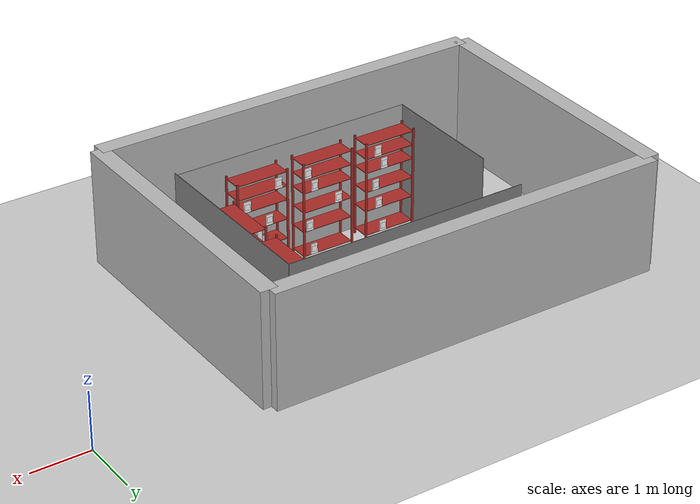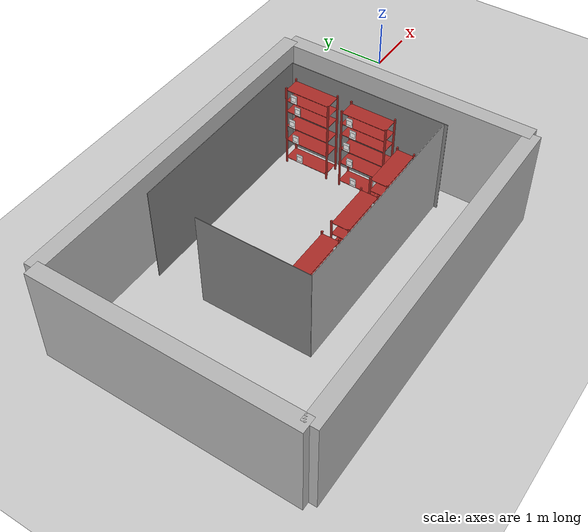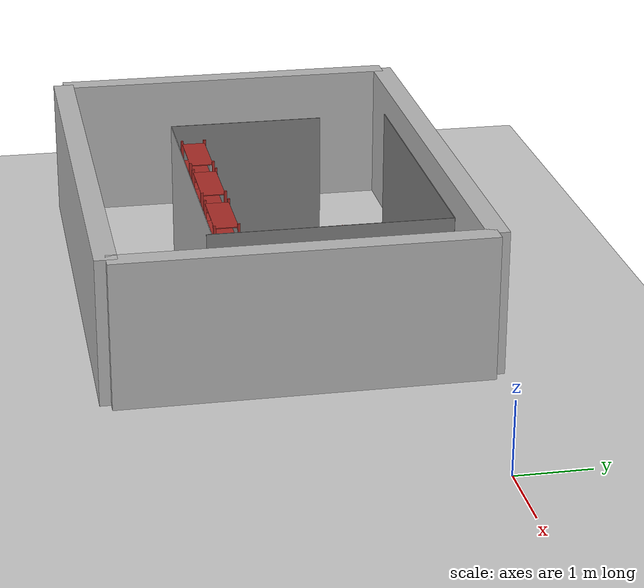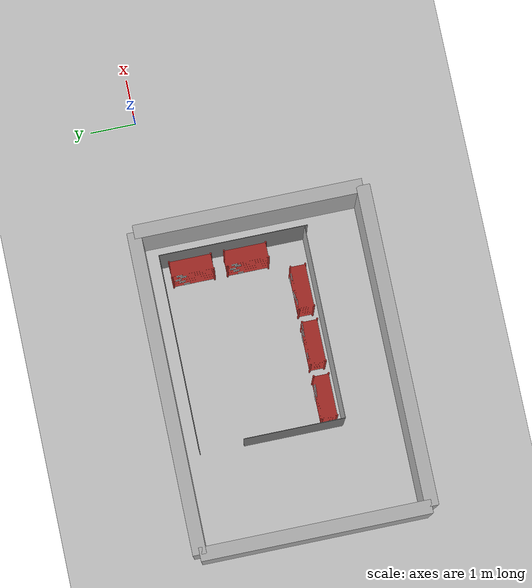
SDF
<?xml version="1.0"?>
<sdf version="1.8">
  <world name="warehouse_world">

    <gravity>0 0 -9.8</gravity>

    <physics type="ode">
      <max_step_size>0.01</max_step_size>
      <real_time_factor>1</real_time_factor>
      <max_contacts>10</max_contacts>
    </physics>

    <plugin name='gz::sim::systems::Physics' filename='gz-sim-physics-system'/>
    <plugin name='gz::sim::systems::UserCommands' filename='gz-sim-user-commands-system'/>
    <plugin name='gz::sim::systems::SceneBroadcaster' filename='gz-sim-scene-broadcaster-system'/>
    <plugin name='gz::sim::systems::Contact' filename='gz-sim-contact-system'/>
    <plugin name='gz::sim::systems::Imu' filename='gz-sim-imu-system'/>
    <plugin name='gz::sim::systems::Magnetometer' filename='gz-sim-magnetometer-system'/>
    <plugin name='gz::sim::systems::Altimeter' filename='gz-sim-altimeter-system'/>
    <plugin
      filename="ignition-gazebo-forcetorque-system"
      name="ignition::gazebo::systems::ForceTorque">
    </plugin>
    <plugin name='gz::sim::systems::Sensors' filename='gz-sim-sensors-system'>
      <render_engine>ogre2</render_engine>
    </plugin>

    <gui fullscreen='false'>

  <!-- ONLY 3D VIEW -->
  <plugin name='3D View' filename='GzScene3D'>
    <gz-gui>
      <title>3D View</title>
      <property type='bool' key='showTitleBar'>0</property>
      <property type='string' key='state'>docked</property>
    </gz-gui>

    <engine>ogre2</engine>
    <scene>scene</scene>

    <ambient_light>0.6 0.6 0.6</ambient_light>
    <background_color>0.9 0.9 0.9</background_color>

    <camera_pose>-6 0 6 0 0.5 0</camera_pose>
  </plugin>

</gui>

    <light name='sunUTC' type='directional'>
      <pose>0 0 500 0 0 0</pose>
      <cast_shadows>false</cast_shadows>
      <intensity>1</intensity>
      <direction>0.001 0.625 -0.78000000000000003</direction>
      <diffuse>0.903999984 0.903999984 0.903999984 1</diffuse>
      <specular>0.270999998 0.270999998 0.270999998 1</specular>
      <attenuation>
        <range>2000</range>
        <linear>0</linear>
        <constant>1</constant>
        <quadratic>0</quadratic>
      </attenuation>
      <spot>
        <inner_angle>0</inner_angle>
        <outer_angle>0</outer_angle>
        <falloff>0</falloff>
      </spot>
    </light>

    <model name="ground_plane">
      <static>true</static>
      <link name="link">
        <collision name="collision">
          <geometry>
            <plane>
              <normal>0 0 1</normal>
              <size>25 25</size>
            </plane>
          </geometry>
          <surface>
            <friction>
              <ode/>
            </friction>
            <bounce/>
            <contact/>
          </surface>
        </collision>
        <visual name="ground_vis">
          <geometry>
            <plane>
              <normal>0 0 1</normal>
              <size>25 25</size>
            </plane>
          </geometry>
          <material>
              <ambient>0.800000012 0.800000012 0.800000012 1</ambient>
            <diffuse>0.800000012 0.800000012 0.800000012 1</diffuse>
            <specular>0.800000012 0.800000012 0.800000012 1</specular>
          </material>
        </visual>
      </link>
    </model>

    <model name="rack_1">
      <static>true</static>
      <pose>-6.733 -2.67 -70.18 1.57 0 0</pose>
      <link name="link">
        <collision name="collision">
          <geometry><mesh><uri>meshes/rackx1000.obj</uri></mesh></geometry>
        </collision>
        <visual name="visual">
          <geometry><mesh><uri>meshes/rackx1000.obj</uri></mesh></geometry>
          <material><ambient>0.6 0.15 0.15 1</ambient><diffuse>0.67 0.17 0.15 1</diffuse></material>
        </visual>
      </link>
    </model>

    <model name="rack_2">
      <static>true</static>
      <pose>-3.713 -2.79 -70.18 1.57 0 1.57</pose>
      <link name="link">
        <collision name="collision">
          <geometry><mesh><uri>meshes/rackx1000.obj</uri></mesh></geometry>
        </collision>
        <visual name="visual">
          <geometry><mesh><uri>meshes/rackx1000.obj</uri></mesh></geometry>
            <material><ambient>0.6 0.15 0.15 1</ambient><diffuse>0.67 0.17 0.15 1</diffuse></material>
        </visual>
      </link>
    </model>

    <model name="rack_3">
      <static>true</static>
      <pose>-3.713 -3.99 -70.18 1.57 0 1.57</pose>
      <link name="link">
        <collision name="collision">
          <geometry><mesh><uri>meshes/rackx1000.obj</uri></mesh></geometry>
        </collision>
        <visual name="visual">
          <geometry><mesh><uri>meshes/rackx1000.obj</uri></mesh></geometry>
          <material><ambient>0.6 0.15 0.15 1</ambient><diffuse>0.67 0.17 0.15 1</diffuse></material>
        </visual>
      </link>
    </model>

    <model name="rack_4">
      <static>true</static>
      <pose>-7.943 -2.67 -70.18 1.57 0 0</pose>
      <link name="link">
        <collision name="collision">
          <geometry><mesh><uri>meshes/rackx1000.obj</uri></mesh></geometry>
        </collision>
        <visual name="visual">
          <geometry><mesh><uri>meshes/rackx1000.obj</uri></mesh></geometry>
            <material><ambient>0.6 0.15 0.15 1</ambient><diffuse>0.67 0.17 0.15 1</diffuse></material>
        </visual>
      </link>
    </model>

    <model name="rack_5">
      <static>true</static>
      <pose>-9.133 -2.67 -70.18 1.57 0 0</pose>
      <link name="link">
        <collision name="collision">
          <geometry><mesh><uri>meshes/rackx1000.obj</uri></mesh></geometry>
        </collision>
        <visual name="visual">
          <geometry><mesh><uri>meshes/rackx1000.obj</uri></mesh></geometry>
          <material><ambient>0.6 0.15 0.15 1</ambient><diffuse>0.67 0.17 0.15 1</diffuse></material>
        </visual>
      </link>
    </model>

    <model name="wall_north">
      <static>true</static>
      <pose>-5.373 0.0700 1 0 0 0</pose>
      <link name="link">
        <collision name="collision">
          <geometry><box><size>4.2 0.01 2</size></box></geometry>
        </collision>
        <visual name="visual">
          <geometry><box><size>4.2 0.01 2</size></box></geometry>
          <material><ambient>0.5 0.5 0.5 1</ambient><diffuse>0.5 0.5 0.5 1</diffuse></material>
        </visual>
      </link>
    </model>

    <model name="wall_south">
      <static>true</static>
      <pose>-5.373 -3.1 1 0 0 0</pose>
      <link name="link">
        <collision name="collision">
          <geometry><box><size>4.2 0.01 2</size></box></geometry>
        </collision>
        <visual name="visual">
          <geometry><box><size>4.2 0.01 2</size></box></geometry>
          <material><ambient>0.7 0.7 0.7 1</ambient>
            <diffuse>0.7 0.7 0.7 1</diffuse>
            <specular>0.7 0.7 0.7 1</specular></material>
        </visual>
      </link>
    </model>

    <model name="wall_east">
      <static>true</static>
      <pose>-3.273 -1.55 1 0 0 1.5708</pose>
      <link name="link">
        <collision name="collision">
          <geometry><box><size>3.24 0.01 2</size></box></geometry>
        </collision>
        <visual name="visual">
          <geometry><box><size>3.24 0.01 2</size></box></geometry>
          <material><ambient>0.5 0.5 0.5 1</ambient><diffuse>0.5 0.5 0.5 1</diffuse></material>
        </visual>
      </link>
    </model>

    <model name="wall_west">
      <static>true</static>
      <pose>-7.473 -2.0 1 0 0 1.5708</pose>
      <link name="link">
        <collision name="collision">
          <geometry><box><size>2.2 0.01 2</size></box></geometry>
        </collision>
        <visual name="visual">
          <geometry><box><size>2.2 0.01 2</size></box></geometry>
          <material><ambient>0.5 0.5 0.5 1</ambient><diffuse>0.5 0.5 0.5 1</diffuse></material>
        </visual>
      </link>
    </model>

    <model name="outer_wall_north">
      <static>true</static>
      <pose>-6.173 0.5 1 0 0 0</pose>
      <link name="link">
        <collision name="collision">
          <geometry><box><size>7 0.3 2</size></box></geometry>
        </collision>
        <visual name="visual">
          <geometry><box><size>7 0.3 2</size></box></geometry>
        </visual>
      </link>
    </model>

    <model name="outer_wall_south">
      <static>true</static>
      <pose>-6.173 -4.5 1 0 0 0</pose>
      <link name="link">
        <collision name="collision">
          <geometry><box><size>7 0.3 2</size></box></geometry>
        </collision>
        <visual name="visual">
          <geometry><box><size>7 0.3 2</size></box></geometry>
        </visual>
      </link>
    </model>

    <model name="outer_wall_east">
      <static>true</static>
      <pose>-2.673 -2.0 1 0 0 1.5708</pose>
      <link name="link">
        <collision name="collision">
          <geometry><box><size>5 0.3 2</size></box></geometry>
        </collision>
        <visual name="visual">
          <geometry><box><size>5 0.3 2</size></box></geometry>
        </visual>
      </link>
    </model>

    <model name="outer_wall_west">
      <static>true</static>
      <pose>-9.673 -2.0 1 0 0 1.5708</pose>
      <link name="link">
        <collision name="collision">
          <geometry><box><size>5 0.3 2</size></box></geometry>
        </collision>
        <visual name="visual">
          <geometry><box><size>5 0.3 2</size></box></geometry>
        </visual>
      </link>
    </model>

<model name="r1_q1"><static>true</static><pose>-4.1376 -2.63 0.2 1.57 0 0</pose><link name="link"><visual name="frame"><geometry><box><size>0.13 0.19 0.01</size></box></geometry><material><diffuse>1 1 1 1</diffuse><emmisive>0 0 0 1</emmisive></material></visual><visual name="qr"><pose>0 0 -0.01 3.1416 0 0</pose><cast_shadows>false</cast_shadows><geometry><plane><normal>0 0 1</normal><size>0.1 0.1</size></plane></geometry><material><ambient>1 1 1 1</ambient><diffuse>1 1 1 1</diffuse><emissive>0 0 0 1</emissive><pbr><metal><albedo_map>textures/r1q1.png</albedo_map><metalness>0.0</metalness><roughness>1.0</roughness></metal></pbr></material></visual></link></model>
<model name="r1_q2"><static>true</static><pose>-4.524 -2.63 0.65 1.57 0 0</pose><link name="link"><visual name="frame"><geometry><box><size>0.13 0.19 0.01</size></box></geometry><material><diffuse>1 1 1 1</diffuse><emmisive>0 0 0 1</emmisive></material></visual><visual name="qr"><pose>0 0 -0.01 3.1416 0 0</pose><cast_shadows>false</cast_shadows><geometry><plane><normal>0 0 1</normal><size>0.1 0.1</size></plane></geometry><material><ambient>1 1 1 1</ambient><diffuse>1 1 1 1</diffuse><emissive>0 0 0 1</emissive><pbr><metal><albedo_map>textures/r1q2.png</albedo_map><metalness>0.0</metalness><roughness>1.0</roughness></metal></pbr></material></visual></link></model>
<model name="r1_q3"><static>true</static><pose>-4.6248 -2.63 1.0 1.57 0 0</pose><link name="link"><visual name="frame"><geometry><box><size>0.13 0.19 0.01</size></box></geometry><material><diffuse>1 1 1 1</diffuse><emmisive>0 0 0 1</emmisive></material></visual><visual name="qr"><pose>0 0 -0.01 3.1416 0 0</pose><cast_shadows>false</cast_shadows><geometry><plane><normal>0 0 1</normal><size>0.1 0.1</size></plane></geometry><material><ambient>1 1 1 1</ambient><diffuse>1 1 1 1</diffuse><emissive>0 0 0 1</emissive><pbr><metal><albedo_map>textures/r1q3.png</albedo_map><metalness>0.0</metalness><roughness>1.0</roughness></metal></pbr></material></visual></link></model>
<model name="r1_q4"><static>true</static><pose>-4.224 -2.63 1.35 1.57 0 0</pose><link name="link"><visual name="frame"><geometry><box><size>0.13 0.19 0.01</size></box></geometry><material><diffuse>1 1 1 1</diffuse><emmisive>0 0 0 1</emmisive></material></visual><visual name="qr"><pose>0 0 -0.01 3.1416 0 0</pose><cast_shadows>false</cast_shadows><geometry><plane><normal>0 0 1</normal><size>0.1 0.1</size></plane></geometry><material><ambient>1 1 1 1</ambient><diffuse>1 1 1 1</diffuse><emissive>0 0 0 1</emissive><pbr><metal><albedo_map>textures/r1q4.png</albedo_map><metalness>0.0</metalness><roughness>1.0</roughness></metal></pbr></material></visual></link></model>
<model name="r1_q5"><static>true</static><pose>-4.804 -2.63 1.6 1.57 0 0</pose><link name="link"><visual name="frame"><geometry><box><size>0.13 0.19 0.01</size></box></geometry><material><diffuse>1 1 1 1</diffuse><emmisive>0 0 0 1</emmisive></material></visual><visual name="qr"><pose>0 0 -0.01 3.1416 0 0</pose><cast_shadows>false</cast_shadows><geometry><plane><normal>0 0 1</normal><size>0.1 0.1</size></plane></geometry><material><ambient>1 1 1 1</ambient><diffuse>1 1 1 1</diffuse><emissive>0 0 0 1</emissive><pbr><metal><albedo_map>textures/r1q5.png</albedo_map><metalness>0.0</metalness><roughness>1.0</roughness></metal></pbr></material></visual></link></model>

<model name="r2_q1"><static>true</static><pose>-3.7458 -0.4075 0.2 1.57 0 1.57</pose><link name="link"><visual name="frame"><geometry><box><size>0.13 0.19 0.01</size></box></geometry><material><diffuse>1 1 1 1</diffuse><emmisive>0 0 0 1</emmisive></material></visual><visual name="qr"><pose>0 0 -0.01 3.1416 0 0</pose><cast_shadows>false</cast_shadows><geometry><plane><normal>0 0 1</normal><size>0.1 0.1</size></plane></geometry><material><ambient>1 1 1 1</ambient><diffuse>1 1 1 1</diffuse><emissive>0 0 0 1</emissive><pbr><metal><albedo_map>textures/r2q1.png</albedo_map><metalness>0.0</metalness><roughness>1.0</roughness></metal></pbr></material></visual></link></model>
<model name="r2_q2"><static>true</static><pose>-3.7458 -0.3175 0.65 1.57 0 1.57</pose><link name="link"><visual name="frame"><geometry><box><size>0.13 0.19 0.01</size></box></geometry><material><diffuse>1 1 1 1</diffuse><emmisive>0 0 0 1</emmisive></material></visual><visual name="qr"><pose>0 0 -0.01 3.1416 0 0</pose><cast_shadows>false</cast_shadows><geometry><plane><normal>0 0 1</normal><size>0.1 0.1</size></plane></geometry><material><ambient>1 1 1 1</ambient><diffuse>1 1 1 1</diffuse><emissive>0 0 0 1</emissive><pbr><metal><albedo_map>textures/r2q2.png</albedo_map><metalness>0.0</metalness><roughness>1.0</roughness></metal></pbr></material></visual></link></model>
<model name="r2_q3"><static>true</static><pose>-3.7458 -0.2375 1.0 1.57 0 1.57</pose><link name="link"><visual name="frame"><geometry><box><size>0.13 0.19 0.01</size></box></geometry><material><diffuse>1 1 1 1</diffuse><emmisive>0 0 0 1</emmisive></material></visual><visual name="qr"><pose>0 0 -0.01 3.1416 0 0</pose><cast_shadows>false</cast_shadows><geometry><plane><normal>0 0 1</normal><size>0.1 0.1</size></plane></geometry><material><ambient>1 1 1 1</ambient><diffuse>1 1 1 1</diffuse><emissive>0 0 0 1</emissive><pbr><metal><albedo_map>textures/r2q3.png</albedo_map><metalness>0.0</metalness><roughness>1.0</roughness></metal></pbr></material></visual></link></model>
<model name="r2_q4"><static>true</static><pose>-3.7458 -0.3575 1.35 1.57 0 1.57</pose><link name="link"><visual name="frame"><geometry><box><size>0.13 0.19 0.01</size></box></geometry><material><diffuse>1 1 1 1</diffuse><emmisive>0 0 0 1</emmisive></material></visual><visual name="qr"><pose>0 0 -0.01 3.1416 0 0</pose><cast_shadows>false</cast_shadows><geometry><plane><normal>0 0 1</normal><size>0.1 0.1</size></plane></geometry><material><ambient>1 1 1 1</ambient><diffuse>1 1 1 1</diffuse><emissive>0 0 0 1</emissive><pbr><metal><albedo_map>textures/r2q4.png</albedo_map><metalness>0.0</metalness><roughness>1.0</roughness></metal></pbr></material></visual></link></model>
<model name="r2_q5"><static>true</static><pose>-3.7458 -0.2775 1.6 1.57 0 1.57</pose><link name="link"><visual name="frame"><geometry><box><size>0.13 0.19 0.01</size></box></geometry><material><diffuse>1 1 1 1</diffuse><emmisive>0 0 0 1</emmisive></material></visual><visual name="qr"><pose>0 0 -0.01 3.1416 0 0</pose><cast_shadows>false</cast_shadows><geometry><plane><normal>0 0 1</normal><size>0.1 0.1</size></plane></geometry><material><ambient>1 1 1 1</ambient><diffuse>1 1 1 1</diffuse><emissive>0 0 0 1</emissive><pbr><metal><albedo_map>textures/r2q5.png</albedo_map><metalness>0.0</metalness><roughness>1.0</roughness></metal></pbr></material></visual></link></model>

<model name="r3_q1"><static>true</static><pose>-3.7458 -1.6075 0.2 1.57 0 1.57</pose><link name="link"><visual name="frame"><geometry><box><size>0.13 0.19 0.01</size></box></geometry><material><diffuse>1 1 1 1</diffuse><emmisive>0 0 0 1</emmisive></material></visual><visual name="qr"><pose>0 0 -0.01 3.1416 0 0</pose><cast_shadows>false</cast_shadows><geometry><plane><normal>0 0 1</normal><size>0.1 0.1</size></plane></geometry><material><ambient>1 1 1 1</ambient><diffuse>1 1 1 1</diffuse><emissive>0 0 0 1</emissive><pbr><metal><albedo_map>textures/r3q1.png</albedo_map><metalness>0.0</metalness><roughness>1.0</roughness></metal></pbr></material></visual></link></model>
<model name="r3_q2"><static>true</static><pose>-3.7458 -1.5175 0.65 1.57 0 1.57</pose><link name="link"><visual name="frame"><geometry><box><size>0.13 0.19 0.01</size></box></geometry><material><diffuse>1 1 1 1</diffuse><emmisive>0 0 0 1</emmisive></material></visual><visual name="qr"><pose>0 0 -0.01 3.1416 0 0</pose><cast_shadows>false</cast_shadows><geometry><plane><normal>0 0 1</normal><size>0.1 0.1</size></plane></geometry><material><ambient>1 1 1 1</ambient><diffuse>1 1 1 1</diffuse><emissive>0 0 0 1</emissive><pbr><metal><albedo_map>textures/r3q2.png</albedo_map><metalness>0.0</metalness><roughness>1.0</roughness></metal></pbr></material></visual></link></model>
<model name="r3_q3"><static>true</static><pose>-3.7458 -1.4375 1.0 1.57 0 1.57</pose><link name="link"><visual name="frame"><geometry><box><size>0.13 0.19 0.01</size></box></geometry><material><diffuse>1 1 1 1</diffuse><emmisive>0 0 0 1</emmisive></material></visual><visual name="qr"><pose>0 0 -0.01 3.1416 0 0</pose><cast_shadows>false</cast_shadows><geometry><plane><normal>0 0 1</normal><size>0.1 0.1</size></plane></geometry><material><ambient>1 1 1 1</ambient><diffuse>1 1 1 1</diffuse><emissive>0 0 0 1</emissive><pbr><metal><albedo_map>textures/r3q3.png</albedo_map><metalness>0.0</metalness><roughness>1.0</roughness></metal></pbr></material></visual></link></model>
<model name="r3_q4"><static>true</static><pose>-3.7458 -1.5575 1.35 1.57 0 1.57</pose><link name="link"><visual name="frame"><geometry><box><size>0.13 0.19 0.01</size></box></geometry><material><diffuse>1 1 1 1</diffuse><emmisive>0 0 0 1</emmisive></material></visual><visual name="qr"><pose>0 0 -0.01 3.1416 0 0</pose><cast_shadows>false</cast_shadows><geometry><plane><normal>0 0 1</normal><size>0.1 0.1</size></plane></geometry><material><ambient>1 1 1 1</ambient><diffuse>1 1 1 1</diffuse><emissive>0 0 0 1</emissive><pbr><metal><albedo_map>textures/r3q4.png</albedo_map><metalness>0.0</metalness><roughness>1.0</roughness></metal></pbr></material></visual></link></model>
<model name="r3_q5"><static>true</static><pose>-3.7458 -1.4775 1.6 1.57 0 1.57</pose><link name="link"><visual name="frame"><geometry><box><size>0.13 0.19 0.01</size></box></geometry><material><diffuse>1 1 1 1</diffuse><emmisive>0 0 0 1</emmisive></material></visual><visual name="qr"><pose>0 0 -0.01 3.1416 0 0</pose><cast_shadows>false</cast_shadows><geometry><plane><normal>0 0 1</normal><size>0.1 0.1</size></plane></geometry><material><ambient>1 1 1 1</ambient><diffuse>1 1 1 1</diffuse><emissive>0 0 0 1</emissive><pbr><metal><albedo_map>textures/r3q5.png</albedo_map><metalness>0.0</metalness><roughness>1.0</roughness></metal></pbr></material></visual></link></model>

<model name="r4_q1"><static>true</static><pose>-5.4516 -2.63 0.2 1.57 0 0</pose><link name="link"><visual name="frame"><geometry><box><size>0.13 0.19 0.01</size></box></geometry><material><diffuse>1 1 1 1</diffuse><emmisive>0 0 0 1</emmisive></material></visual><visual name="qr"><pose>0 0 -0.01 3.1416 0 0</pose><cast_shadows>false</cast_shadows><geometry><plane><normal>0 0 1</normal><size>0.1 0.1</size></plane></geometry><material><ambient>1 1 1 1</ambient><diffuse>1 1 1 1</diffuse><emissive>0 0 0 1</emissive><pbr><metal><albedo_map>textures/r4q1.png</albedo_map><metalness>0.0</metalness><roughness>1.0</roughness></metal></pbr></material></visual></link></model>
<model name="r4_q2"><static>true</static><pose>-5.3716 -2.63 0.65 1.57 0 0</pose><link name="link"><visual name="frame"><geometry><box><size>0.13 0.19 0.01</size></box></geometry><material><diffuse>1 1 1 1</diffuse><emmisive>0 0 0 1</emmisive></material></visual><visual name="qr"><pose>0 0 -0.01 3.1416 0 0</pose><cast_shadows>false</cast_shadows><geometry><plane><normal>0 0 1</normal><size>0.1 0.1</size></plane></geometry><material><ambient>1 1 1 1</ambient><diffuse>1 1 1 1</diffuse><emissive>0 0 0 1</emissive><pbr><metal><albedo_map>textures/r4q2.png</albedo_map><metalness>0.0</metalness><roughness>1.0</roughness></metal></pbr></material></visual></link></model>
<model name="r4_q3"><static>true</static><pose>-5.9216 -2.63 1.0 1.57 0 0</pose><link name="link"><visual name="frame"><geometry><box><size>0.13 0.19 0.01</size></box></geometry><material><diffuse>1 1 1 1</diffuse><emmisive>0 0 0 1</emmisive></material></visual><visual name="qr"><pose>0 0 -0.01 3.1416 0 0</pose><cast_shadows>false</cast_shadows><geometry><plane><normal>0 0 1</normal><size>0.1 0.1</size></plane></geometry><material><ambient>1 1 1 1</ambient><diffuse>1 1 1 1</diffuse><emissive>0 0 0 1</emissive><pbr><metal><albedo_map>textures/r4q3.png</albedo_map><metalness>0.0</metalness><roughness>1.0</roughness></metal></pbr></material></visual></link></model>
<model name="r4_q4"><static>true</static><pose>-5.4716 -2.63 1.35 1.57 0 0</pose><link name="link"><visual name="frame"><geometry><box><size>0.13 0.19 0.01</size></box></geometry><material><diffuse>1 1 1 1</diffuse><emmisive>0 0 0 1</emmisive></material></visual><visual name="qr"><pose>0 0 -0.01 3.1416 0 0</pose><cast_shadows>false</cast_shadows><geometry><plane><normal>0 0 1</normal><size>0.1 0.1</size></plane></geometry><material><ambient>1 1 1 1</ambient><diffuse>1 1 1 1</diffuse><emissive>0 0 0 1</emissive><pbr><metal><albedo_map>textures/r4q4.png</albedo_map><metalness>0.0</metalness><roughness>1.0</roughness></metal></pbr></material></visual></link></model>
<model name="r4_q5"><static>true</static><pose>-5.3516 -2.63 1.6 1.57 0 0</pose><link name="link"><visual name="frame"><geometry><box><size>0.13 0.19 0.01</size></box></geometry><material><diffuse>1 1 1 1</diffuse><emmisive>0 0 0 1</emmisive></material></visual><visual name="qr"><pose>0 0 -0.01 3.1416 0 0</pose><cast_shadows>false</cast_shadows><geometry><plane><normal>0 0 1</normal><size>0.1 0.1</size></plane></geometry><material><ambient>1 1 1 1</ambient><diffuse>1 1 1 1</diffuse><emissive>0 0 0 1</emissive><pbr><metal><albedo_map>textures/r4q5.png</albedo_map><metalness>0.0</metalness><roughness>1.0</roughness></metal></pbr></material></visual></link></model>

<model name="r5_q1"><static>true</static><pose>-6.78 -2.63 0.2 1.57 0 0</pose><link name="link"><visual name="frame"><geometry><box><size>0.13 0.19 0.01</size></box></geometry><material><diffuse>1 1 1 1</diffuse><emmisive>0 0 0 1</emmisive></material></visual><visual name="qr"><pose>0 0 -0.01 3.1416 0 0</pose><cast_shadows>false</cast_shadows><geometry><plane><normal>0 0 1</normal><size>0.1 0.1</size></plane></geometry><material><ambient>1 1 1 1</ambient><diffuse>1 1 1 1</diffuse><emissive>0 0 0 1</emissive><pbr><metal><albedo_map>textures/r5q1.png</albedo_map><metalness>0.0</metalness><roughness>1.0</roughness></metal></pbr></material></visual></link></model>
<model name="r5_q2"><static>true</static><pose>-6.70 -2.63 0.65 1.57 0 0</pose><link name="link"><visual name="frame"><geometry><box><size>0.13 0.19 0.01</size></box></geometry><material><diffuse>1 1 1 1</diffuse><emmisive>0 0 0 1</emmisive></material></visual><visual name="qr"><pose>0 0 -0.01 3.1416 0 0</pose><cast_shadows>false</cast_shadows><geometry><plane><normal>0 0 1</normal><size>0.1 0.1</size></plane></geometry><material><ambient>1 1 1 1</ambient><diffuse>1 1 1 1</diffuse><emissive>0 0 0 1</emissive><pbr><metal><albedo_map>textures/r5q2.png</albedo_map><metalness>0.0</metalness><roughness>1.0</roughness></metal></pbr></material></visual></link></model>
<model name="r5_q3"><static>true</static><pose>-6.64 -2.63 1.0 1.57 0 0</pose><link name="link"><visual name="frame"><geometry><box><size>0.13 0.19 0.01</size></box></geometry><material><diffuse>1 1 1 1</diffuse><emmisive>0 0 0 1</emmisive></material></visual><visual name="qr"><pose>0 0 -0.01 3.1416 0 0</pose><cast_shadows>false</cast_shadows><geometry><plane><normal>0 0 1</normal><size>0.1 0.1</size></plane></geometry><material><ambient>1 1 1 1</ambient><diffuse>1 1 1 1</diffuse><emissive>0 0 0 1</emissive><pbr><metal><albedo_map>textures/r5q3.png</albedo_map><metalness>0.0</metalness><roughness>1.0</roughness></metal></pbr></material></visual></link></model>
<model name="r5_q4"><static>true</static><pose>-6.80 -2.63 1.35 1.57 0 0</pose><link name="link"><visual name="frame"><geometry><box><size>0.13 0.19 0.01</size></box></geometry><material><diffuse>1 1 1 1</diffuse><emmisive>0 0 0 1</emmisive></material></visual><visual name="qr"><pose>0 0 -0.01 3.1416 0 0</pose><cast_shadows>false</cast_shadows><geometry><plane><normal>0 0 1</normal><size>0.1 0.1</size></plane></geometry><material><ambient>1 1 1 1</ambient><diffuse>1 1 1 1</diffuse><emissive>0 0 0 1</emissive><pbr><metal><albedo_map>textures/r5q4.png</albedo_map><metalness>0.0</metalness><roughness>1.0</roughness></metal></pbr></material></visual></link></model>
<model name="r5_q5"><static>true</static><pose>-6.68 -2.63 1.6 1.57 0 0</pose><link name="link"><visual name="frame"><geometry><box><size>0.13 0.19 0.01</size></box></geometry><material><diffuse>1 1 1 1</diffuse><emmisive>0 0 0 1</emmisive></material></visual><visual name="qr"><pose>0 0 -0.01 3.1416 0 0</pose><cast_shadows>false</cast_shadows><geometry><plane><normal>0 0 1</normal><size>0.1 0.1</size></plane></geometry><material><ambient>1 1 1 1</ambient><diffuse>1 1 1 1</diffuse><emissive>0 0 0 1</emissive><pbr><metal><albedo_map>textures/r5q5.png</albedo_map><metalness>0.0</metalness><roughness>1.0</roughness></metal></pbr></material></visual></link></model>
</world>
</sdf>
